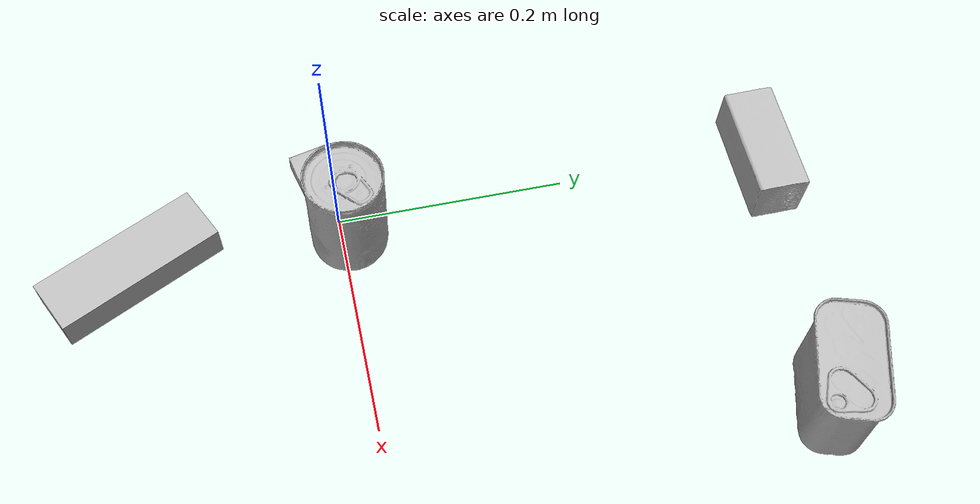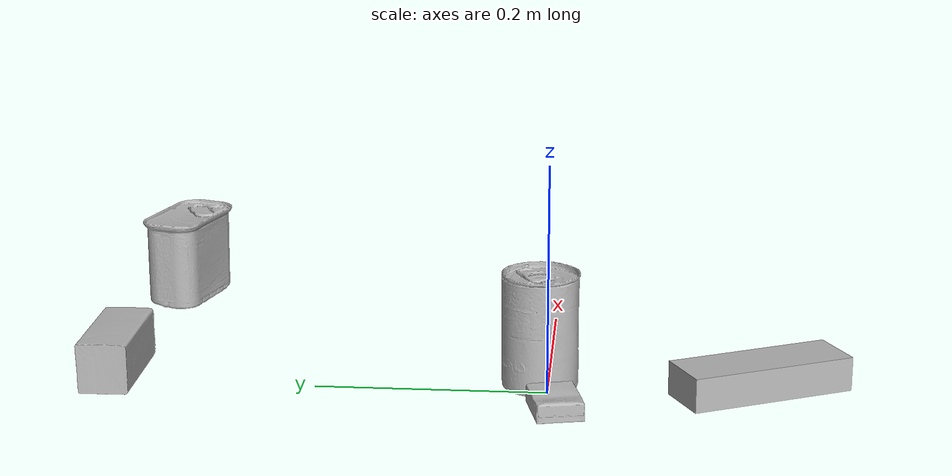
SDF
<sdf version="1.4">
  <world name="default">
    <light name="light1" type="point">
      <pose>0 0 1 0 0 0</pose>
      <diffuse>3 3 3 1</diffuse>
      <specular>3 3 3 1</specular>
    </light>
    <light name="light2" type="point">
      <pose>0 0.5 2 0 0 0</pose>
      <diffuse>1 1 1 1</diffuse>
      <specular>1 1 1 1</specular>
    </light>
    <light name="light3" type="point">
      <pose>0 0.5 2 0 0 0</pose>
      <diffuse>3 3 3 1</diffuse>
      <specular>3 3 3 1</specular>
    </light>
    <scene>
      <ambient>0.7 0.7 0.7</ambient>
    </scene>
    <model name="box1">
      <link name="link_box1">
        <collision name="default">
          <geometry>
            <mesh>
              <uri>model://jenga/collision_meshes/collision.obj</uri>
              <scale>1.0 1.0 1.0</scale>
            </mesh>
          </geometry>
          <surface>
            <friction>
              <ode>
                <mu>0.5</mu>
                <mu2>0.5</mu2>
              </ode>
            </friction>
          <contact>
        <ode>
            <max_vel>0</max_vel>
            <min_depth>0.0001</min_depth>
            <kp>1e8</kp>
        </ode>
    </contact></surface>
        </collision>
        <visual name="default">
          <geometry>
            <mesh>
              <uri>model://jenga/visual_meshes/visual.dae</uri>
              <scale>1.0 1.0 1.0</scale>
            </mesh>
          </geometry>
        </visual>
        <inertial>
          <mass>0.13349448144435883</mass>
          <pose>-2.502855807051674e-07 -0.00010250010382151231 -4.0923401684267446e-05 0.0 -7.342153480750062e-07 0.0</pose>
          <inertia>
            <ixx>3.694116e-05</ixx>
            <iyy>0.0002503123</iyy>
            <izz>0.00026722968</izz>
            <ixy>0</ixy>
            <ixz>0</ixz>
            <iyz>0</iyz>
          </inertia>
        </inertial>
      </link>
      <pose>0.017503224313259125 -0.18120835721492767 0.014999995008111 2.278199454444369e-09 -3.25054588455296e-09 2.026374773975048</pose>
    </model>
    <model name="box2">
      <link name="link_box2">
        <collision name="default">
          <geometry>
            <mesh>
              <uri>model://cracker_box/collision_meshes/collision.obj</uri>
              <scale>0.25 0.25 0.25</scale>
            </mesh>
          </geometry>
          <surface>
            <friction>
              <ode>
                <mu>0.5</mu>
                <mu2>0.5</mu2>
              </ode>
            </friction>
          <contact>
        <ode>
            <max_vel>0</max_vel>
            <min_depth>0.0001</min_depth>
            <kp>1e8</kp>
        </ode>
    </contact></surface>
        </collision>
        <visual name="default">
          <geometry>
            <mesh>
              <uri>model://cracker_box/visual_meshes/visual.dae</uri>
              <scale>0.25 0.25 0.25</scale>
            </mesh>
          </geometry>
        </visual>
        <inertial>
          <mass>0.02145323157310486</mass>
          <pose>0.00023660292208660394 6.358561950037256e-05 -0.00042573839891701937 -0.00031620765701486096 -0.011106487737550933 0.0025467954675071156</pose>
          <inertia>
            <ixx>3.4104648e-06</ixx>
            <iyy>5.631348e-06</iyy>
            <izz>8.036451e-06</izz>
            <ixy>0</ixy>
            <ixz>0</ixz>
            <iyz>0</iyz>
          </inertia>
        </inertial>
      </link>
      <pose>-0.04394346848130226 -0.008226796984672546 0.009120450355112553 -0.011788043104104902 -0.007367144230063675 0.22834071861256555</pose>
    </model>
    <model name="box3">
      <link name="link_box3">
        <collision name="default">
          <geometry>
            <mesh>
              <uri>model://wood_block/collision_meshes/collision.obj</uri>
              <scale>0.5 0.5 0.5</scale>
            </mesh>
          </geometry>
          <surface>
            <friction>
              <ode>
                <mu>0.5</mu>
                <mu2>0.5</mu2>
              </ode>
            </friction>
          <contact>
        <ode>
            <max_vel>0</max_vel>
            <min_depth>0.0001</min_depth>
            <kp>1e8</kp>
        </ode>
    </contact></surface>
        </collision>
        <visual name="default">
          <geometry>
            <mesh>
              <uri>model://wood_block/visual_meshes/visual.dae</uri>
              <scale>0.5 0.5 0.5</scale>
            </mesh>
          </geometry>
        </visual>
        <inertial>
          <mass>0.16313479840755463</mass>
          <pose>-2.9066577553749084e-06 -0.000285404734313488 0.00013204291462898254 -0.05221116552051519 -0.005192696094342747 -0.006861377806143115</pose>
          <inertia>
            <ixx>5.457476e-05</ixx>
            <iyy>0.00017240169</iyy>
            <izz>0.00017175681</izz>
            <ixy>0</ixy>
            <ixz>0</ixz>
            <iyz>0</iyz>
          </inertia>
        </inertial>
      </link>
      <pose>0.017161095514893532 0.3779595196247101 0.0226292684674263 -0.005208549032368228 0.005718686222770759 0.004928856660517666</pose>
    </model>
    <model name="can1">
      <link name="link_can1">
        <collision name="default">
          <geometry>
            <mesh>
              <uri>model://potted_meat_can/collision_meshes/collision.obj</uri>
              <scale>1.0 1.0 1.0</scale>
            </mesh>
          </geometry>
          <surface>
            <friction>
              <ode>
                <mu>0.5</mu>
                <mu2>0.5</mu2>
              </ode>
            </friction>
          <contact>
        <ode>
            <max_vel>0</max_vel>
            <min_depth>0.0001</min_depth>
            <kp>1e8</kp>
        </ode>
    </contact></surface>
        </collision>
        <visual name="default">
          <geometry>
            <mesh>
              <uri>model://potted_meat_can/visual_meshes/visual.dae</uri>
              <scale>1.0 1.0 1.0</scale>
            </mesh>
          </geometry>
        </visual>
        <inertial>
          <mass>0.5782443881034851</mass>
          <pose>0.00022888134117238224 -5.989118290017359e-05 -0.0006367441383190453 -0.028093373189925445 -0.007232601430987569 0.015406267190211613</pose>
          <inertia>
            <ixx>0.0007438508</ixx>
            <iyy>0.00045194585</iyy>
            <izz>0.0005410098</izz>
            <ixy>0</ixy>
            <ixz>0</ixz>
            <iyz>0</iyz>
          </inertia>
        </inertial>
      </link>
      <pose>0.2471279501914978 0.3617236912250519 0.042128000408411026 -3.4678042630946076e-08 -4.805055277783959e-07 1.2765615127988807</pose>
    </model>
    <model name="can2">
      <link name="link_can2">
        <collision name="default">
          <geometry>
            <mesh>
              <uri>model://tomato_soup_can/collision_meshes/collision.obj</uri>
              <scale>1.0 1.0 1.0</scale>
            </mesh>
          </geometry>
          <surface>
            <friction>
              <ode>
                <mu>0.5</mu>
                <mu2>0.5</mu2>
              </ode>
            </friction>
          <contact>
        <ode>
            <max_vel>0</max_vel>
            <min_depth>0.0001</min_depth>
            <kp>1e8</kp>
        </ode>
    </contact></surface>
        </collision>
        <visual name="default">
          <geometry>
            <mesh>
              <uri>model://tomato_soup_can/visual_meshes/visual.dae</uri>
              <scale>1.0 1.0 1.0</scale>
            </mesh>
          </geometry>
        </visual>
        <inertial>
          <mass>0.191082164645195</mass>
          <pose>0.00012652273289859295 0.00010805522470036522 -0.0017973986687138677 0.007020071598615513 0.0004229929517945175 -0.009903241323856832</pose>
          <inertia>
            <ixx>0.0002095054</ixx>
            <iyy>0.00020829454</iyy>
            <izz>0.0001085847</izz>
            <ixy>0</ixy>
            <ixz>0</ixz>
            <iyz>0</iyz>
          </inertia>
        </inertial>
      </link>
      <pose>0.019481895491480827 0.007204517722129822 0.05127401277422905 -4.554170985988335e-07 -7.091594572184258e-07 1.9129576093157272</pose>
    </model>
  <physics type="ode">
      <max_contacts>50</max_contacts>
      <ode>
        <solver>
          <type>quick</type>
          <iters>75</iters>
        </solver>
        <constraints>
          <contact_max_correcting_vel>0</contact_max_correcting_vel>
          <contact_surface_layer>0</contact_surface_layer>
        </constraints>
      </ode>
    </physics></world>
</sdf>
